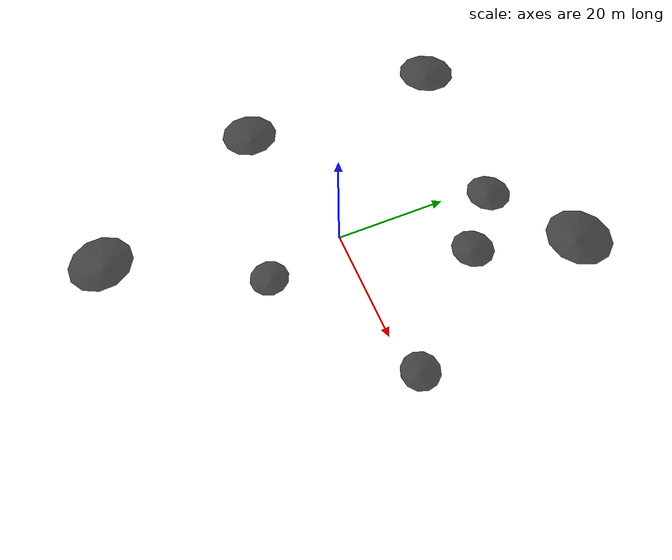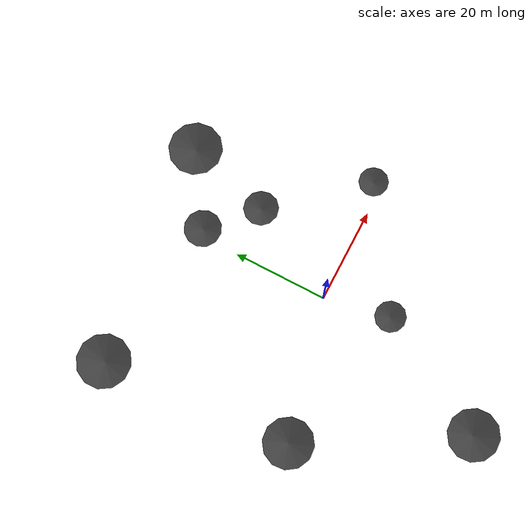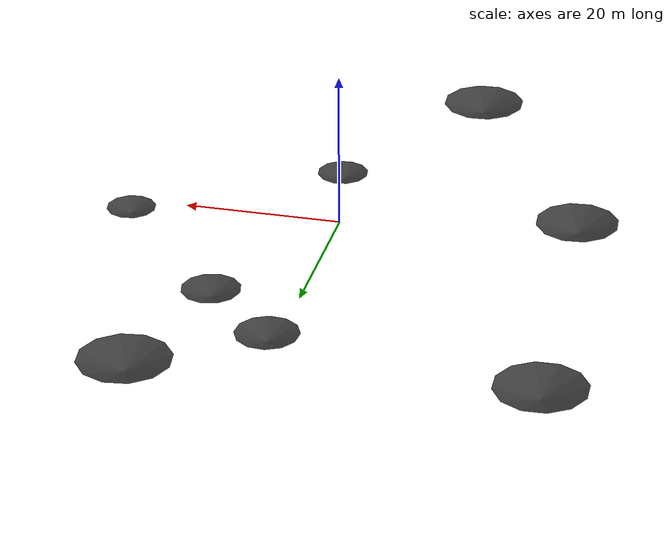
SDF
<sdf version="1.6">
 <world name="enhanced_lunar">
  <physics name="default_physics" default="0" type="ode"><gravity>0 0 -1.62</gravity></physics>
  <light name="sun" type="directional">
   <pose>80 40 150 0 0 0</pose>
   <diffuse>1.3 1.3 1.2 1</diffuse>
   <specular>1.0 1.0 0.95 1</specular>
   <direction>-0.5 -0.3 -0.8</direction>
  </light>
  <light name="fill_light" type="directional">
   <cast_shadows>0</cast_shadows>
   <pose>-40 -20 80 0 0 0</pose>
   <diffuse>0.2 0.2 0.2 1</diffuse>
   <direction>0.3 0.2 -0.5</direction>
  </light>
  <scene><ambient>0.12 0.12 0.12 1</ambient><background>0.0 0.0 0.0 1</background><shadows>1</shadows></scene>
  <model name="crater_01">
   <static>true</static>
   <pose>16.111477996085803 38.33433011410612 0 0 0 1.9632094290711286</pose>
   <link name="crater_link">
    <collision name="collision">
     <geometry><mesh><uri>file://meshes/crater_00.obj</uri></mesh></geometry>
    </collision>
    <visual name="visual">
     <geometry><mesh><uri>file://meshes/crater_00.obj</uri></mesh></geometry>
     <material>
      <ambient>0.15 0.15 0.15 1</ambient>
      <diffuse>0.25 0.25 0.25 1</diffuse>
      <specular>0.05 0.05 0.05 1</specular>
     </material>
    </visual>
   </link>
  </model>
  <model name="crater_02">
   <static>true</static>
   <pose>1.617907677135726 28.813187698746773 0 0 0 3.320546962193277</pose>
   <link name="crater_link">
    <collision name="collision">
     <geometry><mesh><uri>file://meshes/crater_01.obj</uri></mesh></geometry>
    </collision>
    <visual name="visual">
     <geometry><mesh><uri>file://meshes/crater_01.obj</uri></mesh></geometry>
     <material>
      <ambient>0.15 0.15 0.15 1</ambient>
      <diffuse>0.25 0.25 0.25 1</diffuse>
      <specular>0.05 0.05 0.05 1</specular>
     </material>
    </visual>
   </link>
  </model>
  <model name="crater_03">
   <static>true</static>
   <pose>26.797110067934554 1.9538185018498595 0 0 0 5.13751262689305</pose>
   <link name="crater_link">
    <collision name="collision">
     <geometry><mesh><uri>file://meshes/crater_02.obj</uri></mesh></geometry>
    </collision>
    <visual name="visual">
     <geometry><mesh><uri>file://meshes/crater_02.obj</uri></mesh></geometry>
     <material>
      <ambient>0.15 0.15 0.15 1</ambient>
      <diffuse>0.25 0.25 0.25 1</diffuse>
      <specular>0.05 0.05 0.05 1</specular>
     </material>
    </visual>
   </link>
  </model>
  <model name="crater_04">
   <static>true</static>
   <pose>10.982244868189525 20.137453797080546 0 0 0 3.1037969774335727</pose>
   <link name="crater_link">
    <collision name="collision">
     <geometry><mesh><uri>file://meshes/crater_03.obj</uri></mesh></geometry>
    </collision>
    <visual name="visual">
     <geometry><mesh><uri>file://meshes/crater_03.obj</uri></mesh></geometry>
     <material>
      <ambient>0.15 0.15 0.15 1</ambient>
      <diffuse>0.25 0.25 0.25 1</diffuse>
      <specular>0.05 0.05 0.05 1</specular>
     </material>
    </visual>
   </link>
  </model>
  <model name="crater_05">
   <static>true</static>
   <pose>2.892509548381682 -13.753489156198391 0 0 0 6.1565765711207385</pose>
   <link name="crater_link">
    <collision name="collision">
     <geometry><mesh><uri>file://meshes/crater_04.obj</uri></mesh></geometry>
    </collision>
    <visual name="visual">
     <geometry><mesh><uri>file://meshes/crater_04.obj</uri></mesh></geometry>
     <material>
      <ambient>0.15 0.15 0.15 1</ambient>
      <diffuse>0.25 0.25 0.25 1</diffuse>
      <specular>0.05 0.05 0.05 1</specular>
     </material>
    </visual>
   </link>
  </model>
  <model name="crater_06">
   <static>true</static>
   <pose>-31.79110532967738 33.422369283327114 0 0 0 4.487924736152824</pose>
   <link name="crater_link">
    <collision name="collision">
     <geometry><mesh><uri>file://meshes/crater_05.obj</uri></mesh></geometry>
    </collision>
    <visual name="visual">
     <geometry><mesh><uri>file://meshes/crater_05.obj</uri></mesh></geometry>
     <material>
      <ambient>0.15 0.15 0.15 1</ambient>
      <diffuse>0.25 0.25 0.25 1</diffuse>
      <specular>0.05 0.05 0.05 1</specular>
     </material>
    </visual>
   </link>
  </model>
  <model name="crater_07">
   <static>true</static>
   <pose>-10.847477018530853 -38.956730295273175 0 0 0 4.506051797401634</pose>
   <link name="crater_link">
    <collision name="collision">
     <geometry><mesh><uri>file://meshes/crater_06.obj</uri></mesh></geometry>
    </collision>
    <visual name="visual">
     <geometry><mesh><uri>file://meshes/crater_06.obj</uri></mesh></geometry>
     <material>
      <ambient>0.15 0.15 0.15 1</ambient>
      <diffuse>0.25 0.25 0.25 1</diffuse>
      <specular>0.05 0.05 0.05 1</specular>
     </material>
    </visual>
   </link>
  </model>
  <model name="crater_08">
   <static>true</static>
   <pose>-29.168511460310373 -7.03257691704394 0 0 0 4.0088763692002765</pose>
   <link name="crater_link">
    <collision name="collision">
     <geometry><mesh><uri>file://meshes/crater_07.obj</uri></mesh></geometry>
    </collision>
    <visual name="visual">
     <geometry><mesh><uri>file://meshes/crater_07.obj</uri></mesh></geometry>
     <material>
      <ambient>0.15 0.15 0.15 1</ambient>
      <diffuse>0.25 0.25 0.25 1</diffuse>
      <specular>0.05 0.05 0.05 1</specular>
     </material>
    </visual>
   </link>
  </model>
  <plugin name="gazebo_ros_state" filename="libgazebo_ros_state.so">
   <ros><namespace>/gazebo</namespace></ros>
   <update_rate>1.0</update_rate>
  </plugin>
  <plugin name="gazebo_ros_factory" filename="libgazebo_ros_factory.so"/>
 </world>
</sdf>
